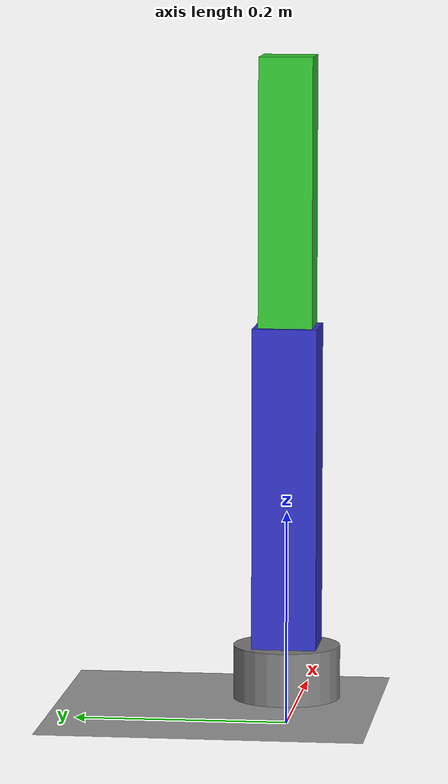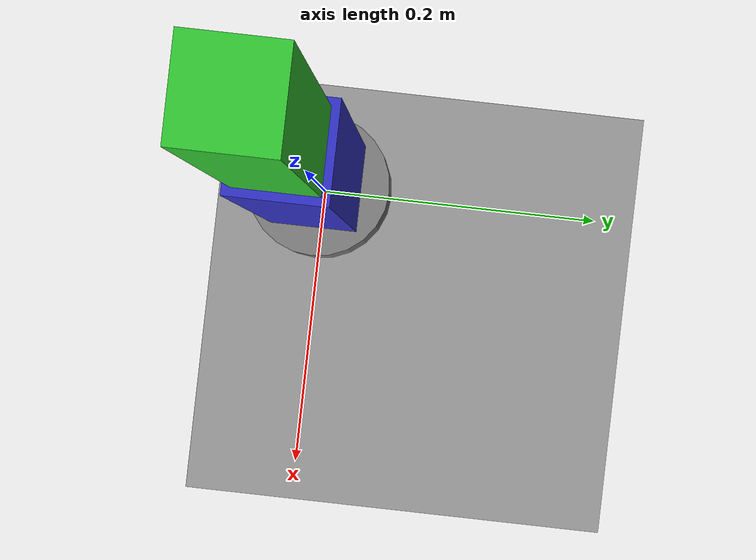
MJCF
<mujoco model="simple_arm">
  <!-- timestep: how much simulated time mj_step() advances per call —
       0.002s (500 Hz) is a common default balancing accuracy and speed
       for a simple rigid-body system like this one. -->
  <option timestep="0.002" gravity="0 0 -9.81"/>

  <worldbody>
    <!-- Ground plane, purely visual/collision reference here — this
       demo's arm is fixed to the world, not resting on the ground. -->
    <geom name="floor" type="plane" size="1 1 0.1" rgba="0.6 0.6 0.6 1"/>

    <!-- base: fixed to the world (no joint), matching Chapter 5's
       base_link being the root of the kinematic tree. -->
    <body name="base" pos="0 0 0.05">
      <geom type="cylinder" size="0.05 0.025" rgba="0.5 0.5 0.5 1"/>

      <!-- link1: hinge joint around Z, same role as Chapter 5's
         joint1 (yaw at the base). -->
      <body name="link1" pos="0 0 0.025">
        <joint name="joint1" type="hinge" axis="0 0 1" range="-180 180"/>
        <geom type="box" size="0.03 0.03 0.15" pos="0 0 0.15" rgba="0.2 0.2 0.8 1"/>
        <inertial pos="0 0 0.15" mass="0.5" diaginertia="0.01 0.01 0.005"/>

        <!-- link2: hinge joint around Y, same role as Chapter 5's
           joint2 (elbow pitch), positioned at the end of link1. -->
        <body name="link2" pos="0 0 0.3">
          <joint name="joint2" type="hinge" axis="0 1 0" range="-115 115"/>
          <geom type="box" size="0.025 0.025 0.125" pos="0 0 0.125" rgba="0.2 0.8 0.2 1"/>
          <inertial pos="0 0 0.125" mass="0.35" diaginertia="0.005 0.005 0.002"/>
        </body>
      </body>
    </body>
  </worldbody>

  <!-- actuator: lets run_sim.py drive each joint with a torque command
       via data.ctrl, rather than only observing passive dynamics. -->
  <actuator>
    <motor name="joint1_motor" joint="joint1" gear="1" ctrlrange="-5 5"/>
    <motor name="joint2_motor" joint="joint2" gear="1" ctrlrange="-5 5"/>
  </actuator>
</mujoco>
